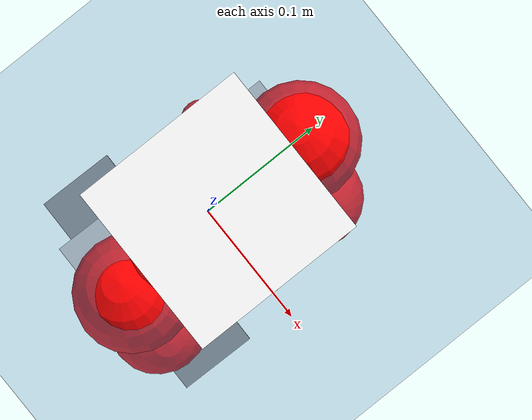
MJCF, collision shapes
<mujoco model="pi_12dof_release_v1">
  <compiler angle="radian" assetdir="assets" balanceinertia="true" inertiafromgeom="false"/>

  <option timestep="0.005" density="1.2" viscosity="2e-05"/>

  <size nkey="1"/>

  <visual>
    <quality shadowsize="8192"/>
    <map shadowclip="0.5"/>
  </visual>

  <default>
    <default class="/">
      <joint armature="0.01" damping="0.01" frictionloss="0.01"/>
      <geom contype="0" conaffinity="0" group="1" solref="-1000 -80"/>
      <site size="0.01 0.005 0.005" group="5"/>
      <general forcelimited="true" biastype="affine" gainprm="20" biasprm="0 -20 -0.5"/>
      <default class="foot">
        <geom size="0.0845 0.036 0.005" type="box" condim="6" group="4" priority="1" friction="0.9 0.2 0.2" solimp="0.015 1 0.005"/>
      </default>
      <default class="reward_collision_sphere">
        <geom group="5" rgba="1 0 0 1"/>
      </default>
    </default>
  </default>

  <asset>
    <texture type="skybox" colorspace="auto" name="//unnamed_texture_0" builtin="gradient" rgb1="0.95 0.95 0.95" rgb2="0.95 0.95 0.95" width="100" height="600"/>
    <texture type="2d" colorspace="auto" name="texplane" builtin="checker" rgb1="0.345 0.575 0.748" rgb2="0.345 0.575 0.748" markrgb="1 1 1" width="512" height="512"/>
    <material name="MatPlane" class="/" texture="texplane" texuniform="true" texrepeat="2 2" specular="0.9"/>
    <mesh name="baselink_1" class="/" file="baselink_1.STL"/>
    <mesh name="r_hip_pitch_link" class="/" file="r_hip_pitch_link.STL"/>
    <mesh name="r_hip_roll_link" class="/" file="r_hip_roll_link.STL"/>
    <mesh name="r_thigh_link" class="/" file="r_thigh_link.STL"/>
    <mesh name="r_calf_link" class="/" file="r_calf_link.STL"/>
    <mesh name="r_ankle_pitch_link" class="/" file="r_ankle_pitch_link.STL"/>
    <mesh name="r_ankle_roll_link" class="/" file="r_ankle_roll_link.STL"/>
    <mesh name="l_hip_pitch_link" class="/" file="l_hip_pitch_link.STL"/>
    <mesh name="l_hip_roll_link" class="/" file="l_hip_roll_link.STL"/>
    <mesh name="l_thigh_link" class="/" file="l_thigh_link.STL"/>
    <mesh name="l_calf_link" class="/" file="l_calf_link.STL"/>
    <mesh name="l_ankle_pitch_link" class="/" file="l_ankle_pitch_link.STL"/>
    <mesh name="l_ankle_roll_link" class="/" file="l_ankle_roll_link.STL"/>
  </asset>

  <worldbody>
    <geom name="floor" class="/" size="100 100 0.125" type="plane" group="0" material="MatPlane"/>
    <light name="toplight_shadow" class="/" pos="0 0 5" dir="0.0990148 0.0990148 -0.990148" type="directional" ambient="0.04 0.04 0.04" diffuse="0.55 0.55 0.55" specular="0.12 0.12 0.12"/>
    <light name="toplight_fill" class="/" pos="0 0 5" dir="0.0990148 0.0990148 -0.990148" type="directional" castshadow="false" ambient="0.04 0.04 0.04" diffuse="0.3 0.3 0.3" specular="0.08 0.08 0.08"/>
    <body name="trunk" pos="0.00475769 0.00171358 0.00231662" quat="0.999998 -0.000855102 0.000715935 -0.00152934">
      <inertial pos="0.00519744 -0.0031155 0.059062" quat="0.698001 0.00306373 -0.0200925 0.715809" mass="3.74891" diaginertia="0.0133641 0.0138224 0.0192035"/>
      <joint name="//unnamed_joint_0" type="free"/>
      <geom name="//unnamed_geom_1" class="/" type="mesh" density="0" rgba="1 1 1 1" mesh="baselink_1"/>
      <geom name="//unnamed_geom_2" class="/" size="0.0595787 0.0595787 0.0595787" pos="0 0 0.111522" type="box" rgba="1 1 1 1"/>
      <geom name="//unnamed_geom_3" class="reward_collision_sphere" size="0.0655366" pos="0 0 0.0975818"/>
      <site name="imu" class="/" pos="-0.01439 0.0493402 0.00321419" size="0.0119157"/>
      <camera name="track" class="/" pos="0 -2.17997 0" quat="0.707107 0.707107 0 0" mode="trackcom"/>
      <camera name="ego_camera" class="/" pos="0.0818036 0 0.250925" quat="-0.5 -0.5 0.5 0.5"/>
      <body name="r_hip_pitch_link" pos="0.00372716 -0.0244571 -0.0429035" quat="0.9923 0.00114584 -0.123769 -0.00451767">
        <inertial pos="0.00338771 -0.0611677 0.000226477" quat="-0.0435643 0.703927 -0.0315908 0.708231" mass="0.563896" diaginertia="0.000149826 0.00013599 0.000380912"/>
        <joint name="r_hip_pitch_joint" class="/" pos="0 0 0" axis="0.00140816 -0.999978 0.00648767" stiffness="0.0366214" range="-1.70876 1.29955" armature="0.013525" damping="0.0346079" frictionloss="0.0120792"/>
        <geom name="//unnamed_geom_4" class="/" type="mesh" density="0" rgba="0.75294 0.75294 0.75294 1" mesh="r_hip_pitch_link"/>
        <geom name="//unnamed_geom_5" class="/" size="0.000595787 0.000595787 0.000595787" type="box" rgba="0.75294 0.75294 0.75294 1"/>
        <body name="r_hip_roll_link" pos="0.00511035 -0.0612216 -0.000399798" quat="0.999999 -0.000274226 -0.000878084 -0.000739783">
          <inertial pos="-0.00126184 0.00816187 -0.0749432" quat="0.705802 -0.0786522 -0.0833368 0.69908" mass="0.661574" diaginertia="0.000538356 0.000453746 0.000703866"/>
          <joint name="r_hip_roll_joint" class="/" pos="0 0 0" axis="-0.999714 -0.00618613 0.023122" stiffness="0.013912" range="-0.0733055 0.341892" armature="0.0116011" damping="0.00752362" frictionloss="0.0120601"/>
          <geom name="//unnamed_geom_6" class="/" type="mesh" density="0" rgba="0.75294 0.75294 0.75294 1" mesh="r_hip_roll_link"/>
          <geom name="//unnamed_geom_7" class="/" size="0.000595787 0.000595787 0.000595787" type="box" rgba="0.75294 0.75294 0.75294 1"/>
          <geom name="//unnamed_geom_8" class="reward_collision_sphere" size="0.047663"/>
          <body name="r_thigh_link" pos="-0.0102663 -0.00861 -0.101304" quat="1 -0.000260936 -5.13159e-05 0.000276515">
            <inertial pos="0.00033147 0.00417896 -0.070644" quat="0.736652 0.676271 -0.000722652 5.95277e-05" mass="0.175087" diaginertia="0.000185477 0.00014669 0.000309346"/>
            <joint name="r_thigh_joint" class="/" pos="0 0 0" axis="-0.00654478 0.0177654 -0.999821" range="-0.298665 0.563004" armature="0.0127419" damping="0.0253811" frictionloss="0.0178377"/>
            <geom name="//unnamed_geom_9" class="/" type="mesh" density="0" rgba="0.75294 0.75294 0.75294 1" mesh="r_thigh_link"/>
            <geom name="//unnamed_geom_10" class="/" size="0.000595787 0.000595787 0.000595787" type="box" rgba="0.75294 0.75294 0.75294 1"/>
            <body name="r_calf_link" pos="-0.00196198 -0.00507756 -0.106565" quat="0.94765 -7.16397e-06 0.31931 -1.46039e-06">
              <inertial pos="-0.00101082 0.00315629 -0.0971497" quat="0.999061 0.000658716 -0.0271674 0.0337303" mass="1.23224" diaginertia="0.00501248 0.0047377 0.000835417"/>
              <joint name="r_calf_joint" class="/" pos="0 0 0" axis="0.00682801 -0.999975 0.00157581" stiffness="0.0365059" range="-1.80634 0.661787" armature="0.0155571" damping="0.0164644" frictionloss="0.0109686"/>
              <geom name="//unnamed_geom_11" class="/" type="mesh" density="0" rgba="0.75294 0.75294 0.75294 1" mesh="r_calf_link"/>
              <geom name="//unnamed_geom_12" class="/" size="0.000595787 0.000595787 0.000595787" type="box" rgba="0.75294 0.75294 0.75294 1"/>
              <geom name="//unnamed_geom_13" class="reward_collision_sphere" size="0.047663"/>
              <body name="r_ankle_pitch_link" pos="-0.00179966 0.00323633 -0.189103" quat="0.980064 5.90451e-06 -0.19868 -5.56391e-06">
                <inertial pos="0.00373002 0.00404377 0.00858975" quat="0.0418845 0.697607 0.0268835 0.71475" mass="0.266476" diaginertia="0.000438979 0.000304859 0.00056333"/>
                <joint name="r_ankle_pitch_joint" class="/" pos="0 0 0" axis="-0.00204731 -0.999993 -0.00315516" range="-1.29785 0.315059" armature="0.0117064" damping="0.00329968" frictionloss="0.00776473"/>
                <geom name="//unnamed_geom_14" class="/" type="mesh" density="0" rgba="0.75294 0.75294 0.75294 1" mesh="r_ankle_pitch_link"/>
                <geom name="//unnamed_geom_15" class="/" size="0.0464714 0.047663 0.0297894" type="box" rgba="0.75294 0.75294 0.75294 1"/>
                <body name="r_ankle_roll_link" pos="0.085511 0.0068247 0.00317704" quat="1 0.000178863 -6.63545e-05 -0.000422826">
                  <inertial pos="-0.0252347 0.00245425 -0.0303842" quat="0.557355 0.440397 0.438246 0.550769" mass="1.05833" diaginertia="0.00193939 0.00157289 0.00184212"/>
                  <joint name="r_ankle_roll_joint" class="/" pos="0 0 0" axis="-0.99927 0.0320527 0.0207919" range="-0.234933 0.291646" armature="0.0171815" damping="0" frictionloss="0.0136113"/>
                  <geom name="//unnamed_geom_16" class="/" type="mesh" density="0" rgba="0.75294 0.75294 0.75294 1" mesh="r_ankle_roll_link"/>
                  <geom name="//unnamed_geom_17" class="/" type="mesh" rgba="0.75294 0.75294 0.75294 1" mesh="r_ankle_roll_link"/>
                  <geom name="right_foot" class="foot" size="0.131501 0.0451974 0.0063045" pos="-0.0556264 0 -0.0613372"/>
                  <geom name="//unnamed_geom_19" class="reward_collision_sphere" size="0.047663" pos="-0.0545357 0 -0.0278805"/>
                  <geom name="//unnamed_geom_20" class="reward_collision_sphere" size="0.0238315" pos="0.0163607 0.0217997 -0.0557611"/>
                  <geom name="//unnamed_geom_21" class="reward_collision_sphere" size="0.0238315" pos="-0.130886 0.0217997 -0.0557611"/>
                  <site name="right_foot" class="foot" pos="-0.0556264 0 -0.0613372" size="0.0119157"/>
                </body>
              </body>
            </body>
          </body>
        </body>
      </body>
      <body name="l_hip_pitch_link" pos="-0.00212637 0.0274546 -0.0378385" quat="0.992232 -0.000485641 -0.124401 -0.000454033">
        <inertial pos="0.000269847 0.0565637 0.00736369" quat="-0.0323788 0.706787 0.0357614 0.70578" mass="0.581568" diaginertia="0.000176797 0.000166259 0.000530955"/>
        <joint name="l_hip_pitch_joint" class="/" pos="0 0 0" axis="-0.0109097 0.999869 0.0119705" range="-1.34989 1.79606" armature="0.00854264" damping="0.0288728" frictionloss="0.0109411"/>
        <geom name="//unnamed_geom_22" class="/" type="mesh" density="0" rgba="0.75294 0.75294 0.75294 1" mesh="l_hip_pitch_link"/>
        <geom name="//unnamed_geom_23" class="/" size="0.000595787 0.000595787 0.000595787" type="box" rgba="0.75294 0.75294 0.75294 1"/>
        <body name="l_hip_roll_link" pos="0.000227408 0.0609979 0.00210358" quat="1 -0.000367117 0.000457526 5.25162e-05">
          <inertial pos="0.00514294 0.00232549 -0.075049" quat="0.723807 -0.0626027 -0.0681965 0.683764" mass="0.635506" diaginertia="0.000558656 0.00042914 0.000730037"/>
          <joint name="l_hip_roll_joint" class="/" pos="0 0 0" axis="-1 -4.17858e-06 -0.000900931" range="-0.334456 0.00255442" armature="0.0135638" damping="0.0518883" frictionloss="0.0120271"/>
          <geom name="//unnamed_geom_24" class="/" type="mesh" density="0" rgba="0.75294 0.75294 0.75294 1" mesh="l_hip_roll_link"/>
          <geom name="//unnamed_geom_25" class="/" size="0.000595787 0.000595787 0.000595787" type="box" rgba="0.75294 0.75294 0.75294 1"/>
          <geom name="//unnamed_geom_26" class="reward_collision_sphere" size="0.047663"/>
          <body name="l_thigh_link" pos="0.00350456 -0.00160879 -0.0910699" quat="1 -0.000400481 9.14136e-05 0.00070685">
            <inertial pos="-0.00306364 0.00213745 -0.0704347" quat="0.663327 0.747909 -0.0171825 0.0182755" mass="0.203965" diaginertia="0.000193969 0.000144268 0.000308065"/>
            <joint name="l_thigh_joint" class="/" pos="0 0 0" axis="0.000768658 0.000871133 -0.999999" stiffness="0.0449923" range="-0.588477 0.351589" armature="0.0120972" damping="0.00275954" frictionloss="0.0108182"/>
            <geom name="//unnamed_geom_27" class="/" type="mesh" density="0" rgba="0.75294 0.75294 0.75294 1" mesh="l_thigh_link"/>
            <geom name="//unnamed_geom_28" class="/" size="0.000595787 0.000595787 0.000595787" type="box" rgba="0.75294 0.75294 0.75294 1"/>
            <body name="l_calf_link" pos="-0.00399434 -0.000292212 -0.100444" quat="0.947705 4.1994e-05 0.319149 -0.000430075">
              <inertial pos="0.000615611 -0.00323291 -0.0925896" quat="0.99998 0.00313873 0.000225444 0.00551774" mass="1.50566" diaginertia="0.00595088 0.00591177 0.00101679"/>
              <joint name="l_calf_joint" class="/" pos="0 0 0" axis="-0.00728687 0.999965 -0.00405409" stiffness="0.0102781" range="-0.839984 1.49838" armature="0.0117147" damping="0.00636326" frictionloss="0.0116938"/>
              <geom name="//unnamed_geom_29" class="/" type="mesh" density="0" rgba="0.75294 0.75294 0.75294 1" mesh="l_calf_link"/>
              <geom name="//unnamed_geom_30" class="/" size="0.000595787 0.000595787 0.000595787" type="box" rgba="0.75294 0.75294 0.75294 1"/>
              <geom name="//unnamed_geom_31" class="reward_collision_sphere" size="0.047663"/>
              <body name="l_ankle_pitch_link" pos="0.000549474 0.00120405 -0.20376" quat="0.98008 -0.000335243 -0.198601 -0.000522625">
                <inertial pos="0.00864946 -0.00569262 0.000409761" quat="-0.00276764 0.708518 0.000560048 0.705687" mass="0.345643" diaginertia="0.000500835 0.000358724 0.000628428"/>
                <joint name="l_ankle_pitch_joint" class="/" pos="0 0 0" axis="-0.0064067 0.999961 0.00607704" range="-0.3518 1.28315" armature="0.0151241" damping="0" frictionloss="0.012473"/>
                <geom name="//unnamed_geom_32" class="/" type="mesh" density="0" rgba="0.75294 0.75294 0.75294 1" mesh="l_ankle_pitch_link"/>
                <geom name="//unnamed_geom_33" class="/" size="0.0464714 0.047663 0.0297894" type="box" rgba="0.75294 0.75294 0.75294 1"/>
                <body name="l_ankle_roll_link" pos="0.0733678 0.00168764 -0.00499278" quat="1 1.22274e-05 0.000606734 0.000518773">
                  <inertial pos="-0.0272737 -0.000590435 -0.0206525" quat="0.566086 0.428267 0.429467 0.558294" mass="0.984547" diaginertia="0.00181487 0.00162777 0.00160946"/>
                  <joint name="l_ankle_roll_joint" class="/" pos="0 0 0" axis="-1 0.000750177 -0.000289145" range="-0.162228 0.157942" armature="0.0087491" damping="0" frictionloss="0.0117286"/>
                  <geom name="//unnamed_geom_34" class="/" type="mesh" density="0" rgba="0.75294 0.75294 0.75294 1" mesh="l_ankle_roll_link"/>
                  <geom name="//unnamed_geom_35" class="/" type="mesh" rgba="0.75294 0.75294 0.75294 1" mesh="l_ankle_roll_link"/>
                  <geom name="left_foot" class="foot" size="0.0950139 0.0296925 0.00379511" pos="-0.0556264 0 -0.0613372"/>
                  <geom name="//unnamed_geom_37" class="reward_collision_sphere" size="0.047663" pos="-0.0545357 0 -0.0278805"/>
                  <geom name="//unnamed_geom_38" class="reward_collision_sphere" size="0.0238315" pos="0.0163607 -0.0217997 -0.0557611"/>
                  <geom name="//unnamed_geom_39" class="reward_collision_sphere" size="0.0238315" pos="-0.130886 -0.0217997 -0.0557611"/>
                  <site name="left_foot" class="foot" pos="-0.0556264 0 -0.0613372" size="0.0119157"/>
                </body>
              </body>
            </body>
          </body>
        </body>
      </body>
    </body>
  </worldbody>

  <contact>
    <pair class="/" geom1="floor" geom2="right_foot" name="//unnamed_contact_1"/>
    <pair class="/" geom1="floor" geom2="left_foot" name="//unnamed_contact_0"/>
  </contact>

  <actuator>
    <general name="r_hip_pitch_joint" class="/" joint="r_hip_pitch_joint" forcerange="-25.4994 25.4994" gainprm="23.2611" biasprm="0 -23.2611 -0.671497"/>
    <general name="r_hip_roll_joint" class="/" joint="r_hip_roll_joint" forcerange="-31.7979 31.7979" gainprm="23.2611" biasprm="0 -23.2611 -0.671497"/>
    <general name="r_thigh_joint" class="/" joint="r_thigh_joint" forcerange="-22.7221 22.7221" gainprm="23.2611" biasprm="0 -23.2611 -0.671497"/>
    <general name="r_calf_joint" class="/" joint="r_calf_joint" forcerange="-25.1706 25.1706" gainprm="23.2611" biasprm="0 -23.2611 -0.671497"/>
    <general name="r_ankle_pitch_joint" class="/" joint="r_ankle_pitch_joint" forcerange="-24.3157 24.3157" gainprm="23.2611" biasprm="0 -23.2611 -0.671497"/>
    <general name="r_ankle_roll_joint" class="/" joint="r_ankle_roll_joint" forcerange="-22.384 22.384" gainprm="23.2611" biasprm="0 -23.2611 -0.671497"/>
    <general name="l_hip_pitch_joint" class="/" joint="l_hip_pitch_joint" forcerange="-26.5772 26.5772" gainprm="23.2611" biasprm="0 -23.2611 -0.671497"/>
    <general name="l_hip_roll_joint" class="/" joint="l_hip_roll_joint" forcerange="-18.8189 18.8189" gainprm="23.2611" biasprm="0 -23.2611 -0.671497"/>
    <general name="l_thigh_joint" class="/" joint="l_thigh_joint" forcerange="-32.2557 32.2557" gainprm="23.2611" biasprm="0 -23.2611 -0.671497"/>
    <general name="l_calf_joint" class="/" joint="l_calf_joint" forcerange="-27.0462 27.0462" gainprm="23.2611" biasprm="0 -23.2611 -0.671497"/>
    <general name="l_ankle_pitch_joint" class="/" joint="l_ankle_pitch_joint" forcerange="-21.7744 21.7744" gainprm="23.2611" biasprm="0 -23.2611 -0.671497"/>
    <general name="l_ankle_roll_joint" class="/" joint="l_ankle_roll_joint" forcerange="-15.4005 15.4005" gainprm="23.2611" biasprm="0 -23.2611 -0.671497"/>
  </actuator>

  <sensor>
    <gyro site="imu" name="imu_angular_velocity"/>
    <velocimeter site="imu" name="imu_linear_velocity"/>
    <framelinvel objtype="site" objname="left_foot" name="left_foot_global_linear_velocity"/>
    <framelinvel objtype="site" objname="right_foot" name="right_foot_global_linear_velocity"/>
  </sensor>

  <keyframe>
    <key name="home" qpos="0 0 0.291 1 0 0 0 0.4 0 0 -0.8 0.4 0 -0.4 0 0 0.8 -0.4 0"/>
  </keyframe>
</mujoco>
